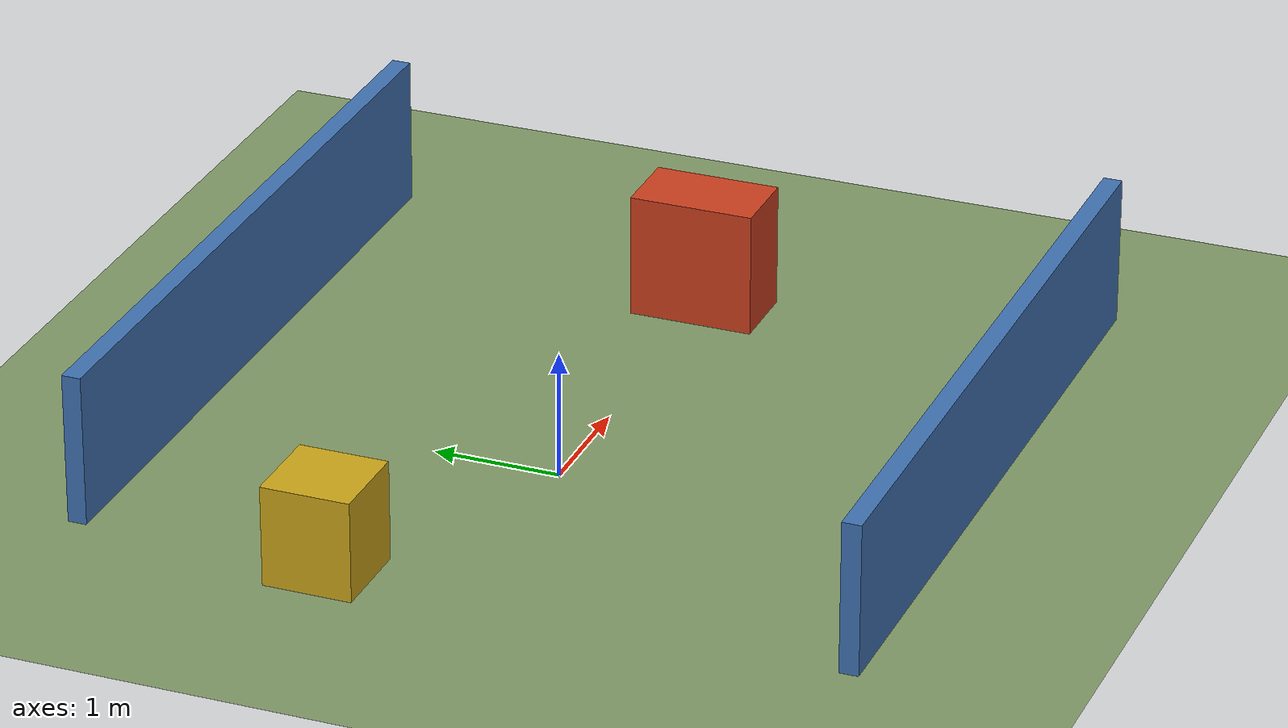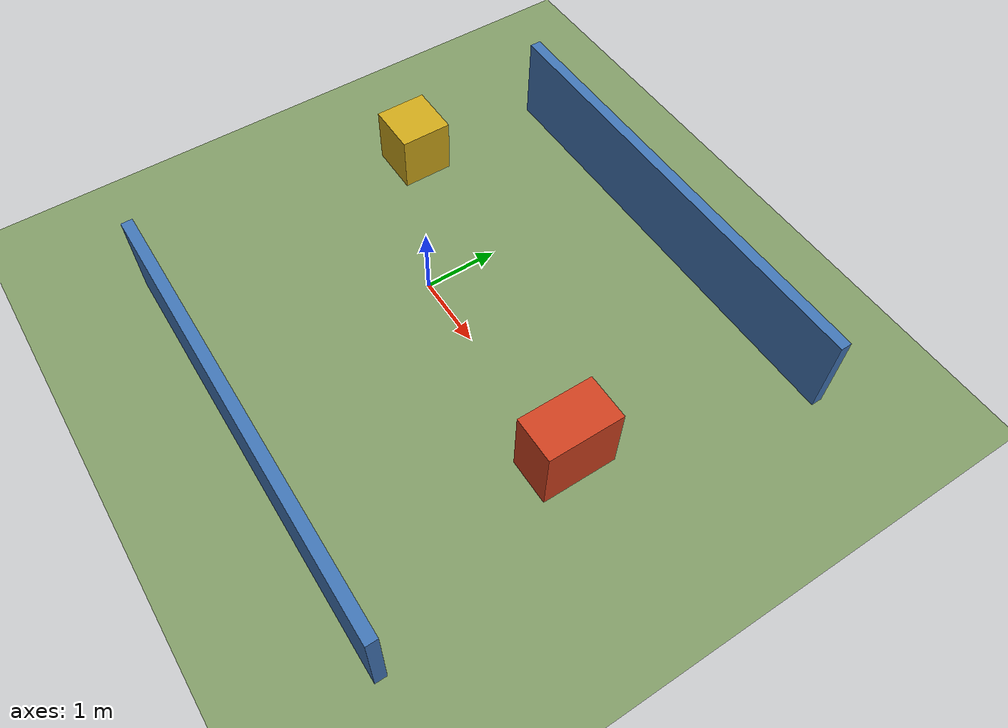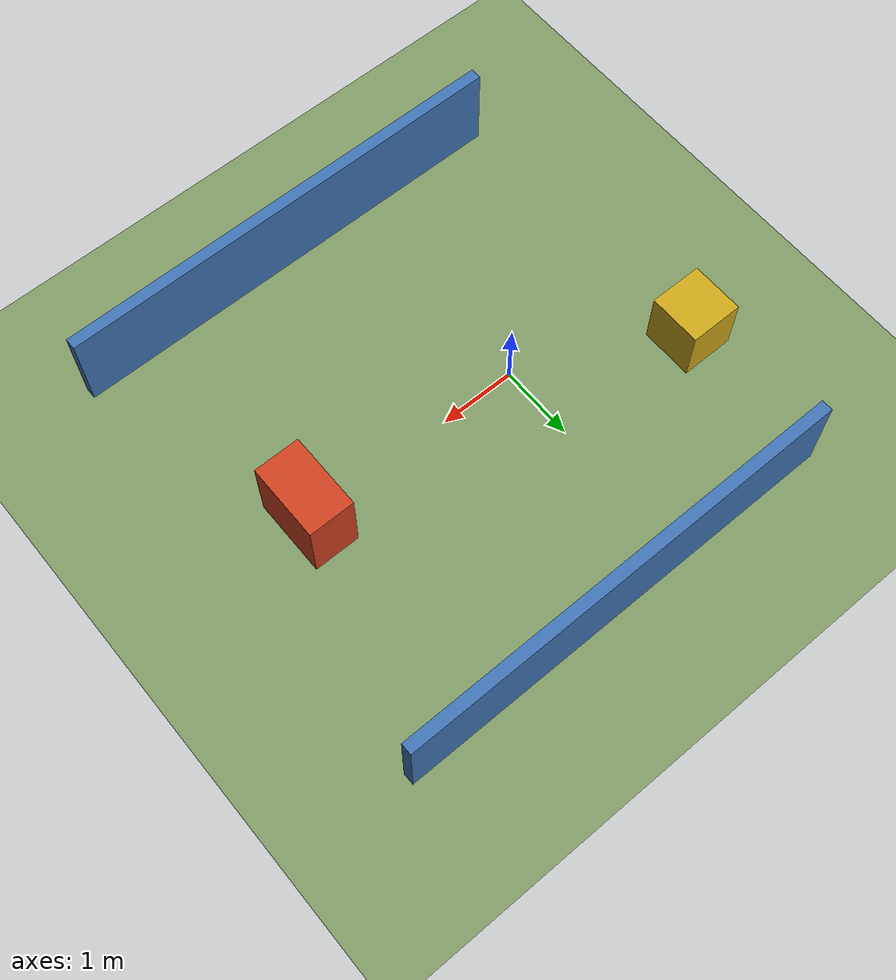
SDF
<?xml version='1.0' encoding='utf-8'?>
<sdf version="1.6">
  <world name="demo_obstacles">
    <physics name="suspension_ode" type="ode">
      <max_step_size>0.0002</max_step_size>
      <real_time_update_rate>5000</real_time_update_rate>
      <real_time_factor>1.0</real_time_factor>
      <ode>
        <solver>
          <type>quick</type>
          <iters>100</iters>
          <sor>1.0</sor>
        </solver>
        <constraints>
          <contact_max_correcting_vel>0.1</contact_max_correcting_vel>
          <contact_surface_layer>0.001</contact_surface_layer>
        </constraints>
      </ode>
    </physics>
    <light type="directional" name="sun">
      <cast_shadows>true</cast_shadows>
      <pose>0 0 10 0 0 0</pose>
      <diffuse>0.8 0.8 0.8 1</diffuse>
      <specular>0.2 0.2 0.2 1</specular>
      <direction>-0.5 0.1 -0.9</direction>
    </light>
    <model name="ground_plane">
      <static>true</static>
      <link name="link">
        <collision name="collision">
          <geometry>
            <plane>
              <normal>0 0 1</normal>
              <size>100 100</size>
            </plane>
          </geometry>
          <surface>
            <friction>
              <ode>
                <mu>100</mu>
                <mu2>100</mu2>
              </ode>
            </friction>
          </surface>
        </collision>
        <visual name="visual">
          <geometry>
            <plane>
              <normal>0 0 1</normal>
              <size>100 100</size>
            </plane>
          </geometry>
          <material>
            <ambient>0.5 0.6 0.4 1</ambient>
            <diffuse>0.5 0.6 0.4 1</diffuse>
            <specular>0.1 0.1 0.1 1</specular>
          </material>
        </visual>
      </link>
    </model>
    <model name="front_box">
      <static>true</static>
      <pose>3 0 0.5 0 0 0</pose>
      <link name="link">
        <collision name="collision">
          <geometry>
            <box>
              <size>0.6 1.0 1.0</size>
            </box>
          </geometry>
        </collision>
        <visual name="visual">
          <geometry>
            <box>
              <size>0.6 1.0 1.0</size>
            </box>
          </geometry>
          <material>
            <ambient>0.8 0.25 0.12 1</ambient>
            <diffuse>0.8 0.25 0.12 1</diffuse>
          </material>
        </visual>
      </link>
    </model>
    <model name="left_wall">
      <static>true</static>
      <pose>1 3 0.6 0 0 0</pose>
      <link name="link">
        <collision name="collision">
          <geometry>
            <box>
              <size>6 0.15 1.2</size>
            </box>
          </geometry>
        </collision>
        <visual name="visual">
          <geometry>
            <box>
              <size>6 0.15 1.2</size>
            </box>
          </geometry>
          <material>
            <ambient>0.25 0.45 0.7 1</ambient>
            <diffuse>0.25 0.45 0.7 1</diffuse>
          </material>
        </visual>
      </link>
    </model>
    <model name="right_wall">
      <static>true</static>
      <pose>1 -3 0.6 0 0 0</pose>
      <link name="link">
        <collision name="collision">
          <geometry>
            <box>
              <size>6 0.15 1.2</size>
            </box>
          </geometry>
        </collision>
        <visual name="visual">
          <geometry>
            <box>
              <size>6 0.15 1.2</size>
            </box>
          </geometry>
          <material>
            <ambient>0.25 0.45 0.7 1</ambient>
            <diffuse>0.25 0.45 0.7 1</diffuse>
          </material>
        </visual>
      </link>
    </model>
    <model name="rear_box">
      <static>true</static>
      <pose>-2 1 0.4 0 0 0</pose>
      <link name="link">
        <collision name="collision">
          <geometry>
            <box>
              <size>0.7 0.7 0.8</size>
            </box>
          </geometry>
        </collision>
        <visual name="visual">
          <geometry>
            <box>
              <size>0.7 0.7 0.8</size>
            </box>
          </geometry>
          <material>
            <ambient>0.8 0.65 0.1 1</ambient>
            <diffuse>0.8 0.65 0.1 1</diffuse>
          </material>
        </visual>
      </link>
    </model>
  </world>
</sdf>
